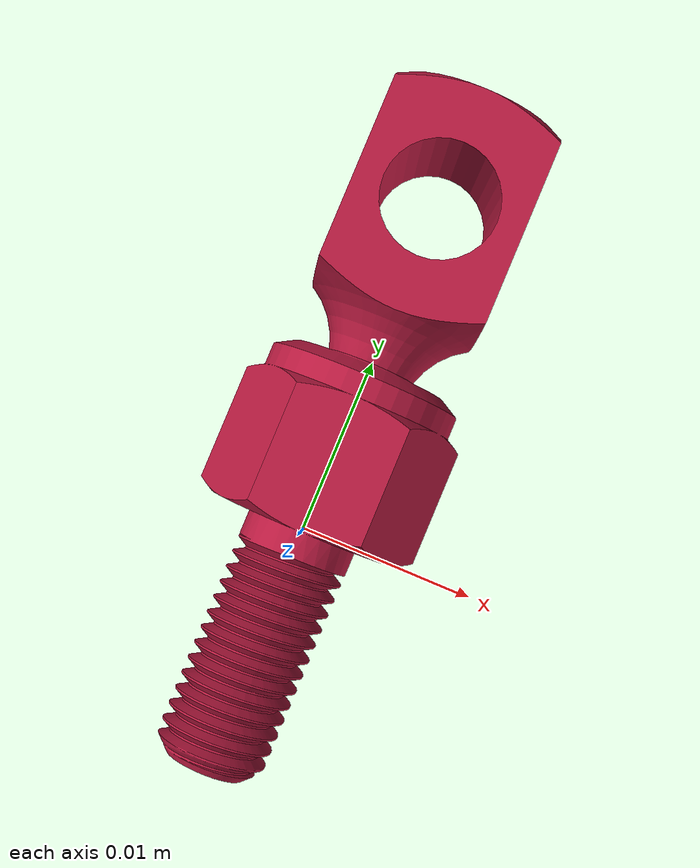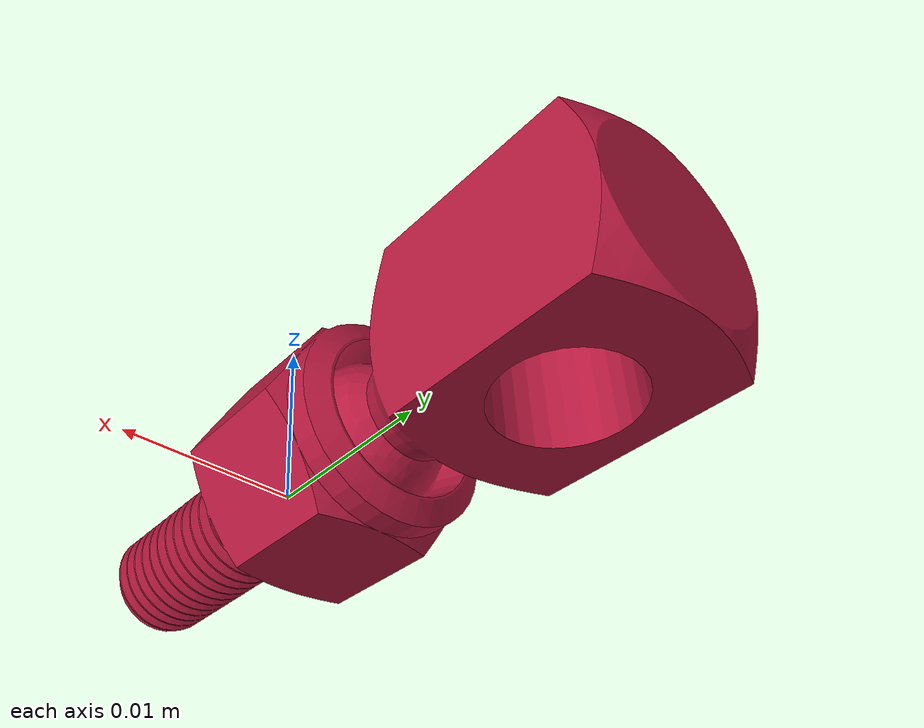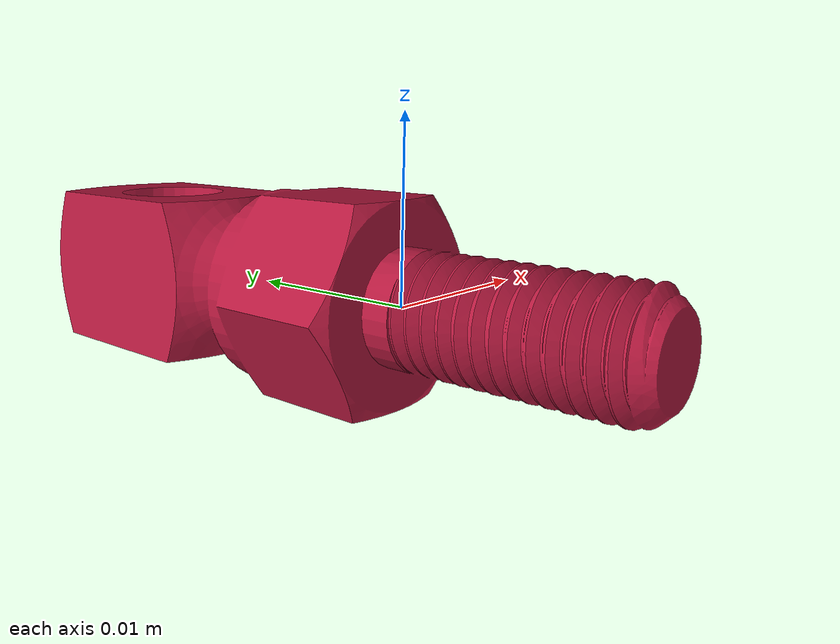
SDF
<?xml version="1.0" ?>
<sdf version="1.0">
  <model name="3d_ball_joint">
    <link name="link">
      <inertial>
        <pose>-0.000000663 0.008244839 0.000000107 0 0 0</pose>
        <mass>0.1</mass>
        <inertia>
          <ixx>0.0000106461075445043</ixx>
          <ixy>-0.000000000854730298789732</ixy>
          <ixz>0.0000000000119091865302132</ixz>
          <iyy>0.00000141537424288903</iyy>
          <iyz>0.000000000363793782410685</iyz>
          <izz>0.0000107151933106884</izz>
        </inertia>
      </inertial>
      <collision name="collision">
        <pose>0 0 0 0 0 0</pose>
        <geometry>
          <mesh>
            <uri>model://3d_ball_joint/ball_joint_001.stl</uri>
          </mesh>
        </geometry>
        <surface>
          <friction>
            <ode>
              <mu>100000.0</mu>
              <mu2>100000.0</mu2>
            </ode>
          </friction>
          <contact>
            <ode>
              <kp>1000000.0</kp>
              <kd>1000000.0</kd>
              <min_depth>0.001</min_depth>
              <max_vel>0</max_vel>
            </ode>
          </contact>
        </surface>
      </collision>
      <visual name="visual">
        <pose>0 0 0 0 0 0</pose>
        <geometry>
          <mesh>
            <uri>model://3d_ball_joint/ball_joint_001.stl</uri>
          </mesh>
        </geometry>
<material>
          <ambient>0.72 0.1 0.25 1</ambient>
          <diffuse>0.72 0.1 0.25 1</diffuse>
          <specular>0.01 0.01 0.01 1</specular>
          <emissive>0 0 0 1</emissive>
          <shader type='vertex'>
            <normal_map>__default__</normal_map>
          </shader>
        </material>
        <cast_shadows>1</cast_shadows>
        <transparency>0</transparency>
      </visual>
    </link>
<static>0</static>
    <allow_auto_disable>1</allow_auto_disable>
  </model>
</sdf>
